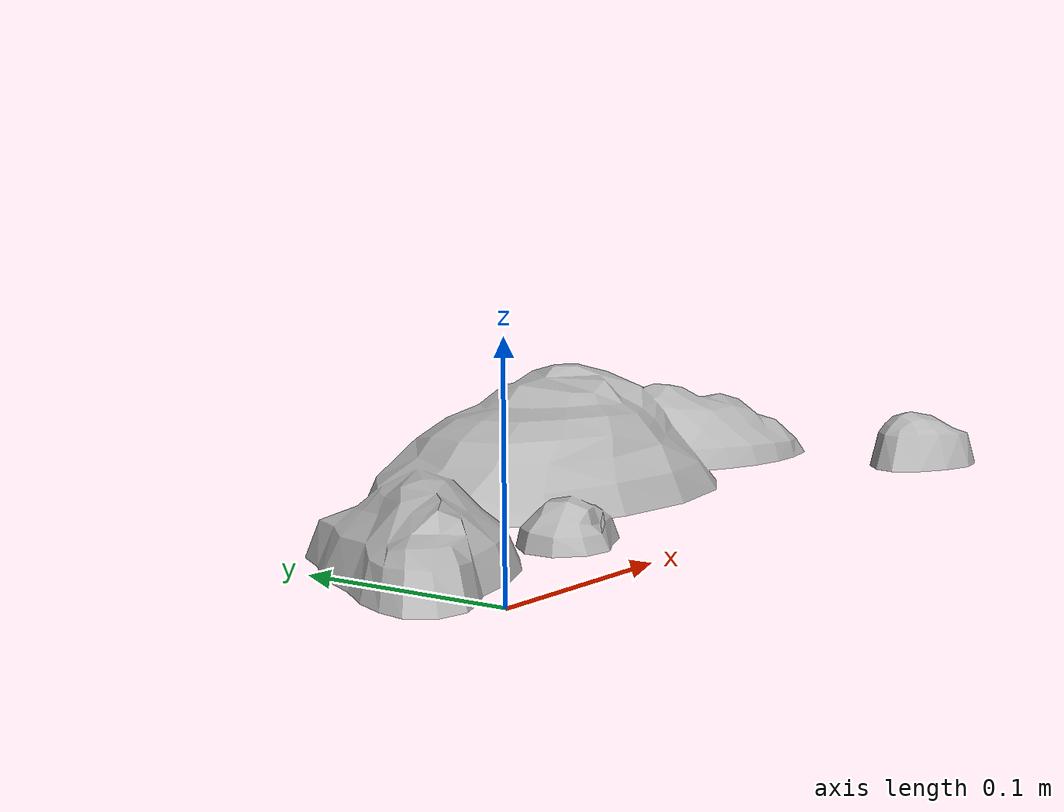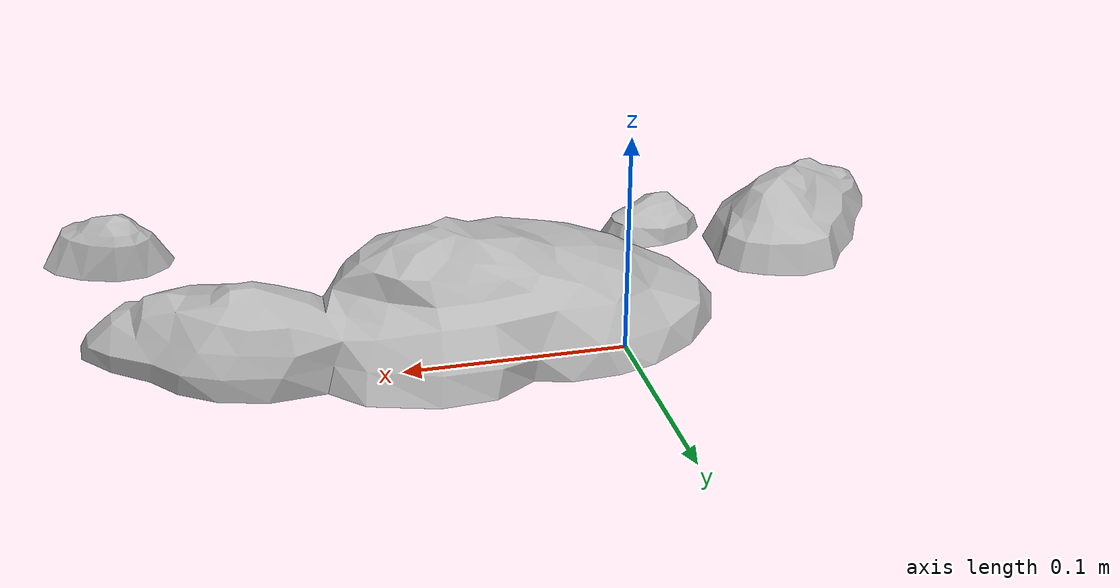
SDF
<?xml version='1.0'?>
<sdf version='1.7'>
  <model name='snow'>
	<static>true</static>
    <link name='link_0'>

		<collision name="collision">
		<geometry>
			<mesh>
				<uri>model://snow/mesh/model.dae</uri>
				<scale>0 0 0</scale>
			</mesh>
		</geometry>
		</collision>

		<visual name="visual">
		<cast_shadows>true</cast_shadows>
		<geometry>
			<mesh>
				<uri>model://snow/mesh/model.dae</uri>
				<scale>0.04 0.04 0.04</scale>
			</mesh>
		</geometry>
		</visual>
    </link>
  </model>
</sdf>
